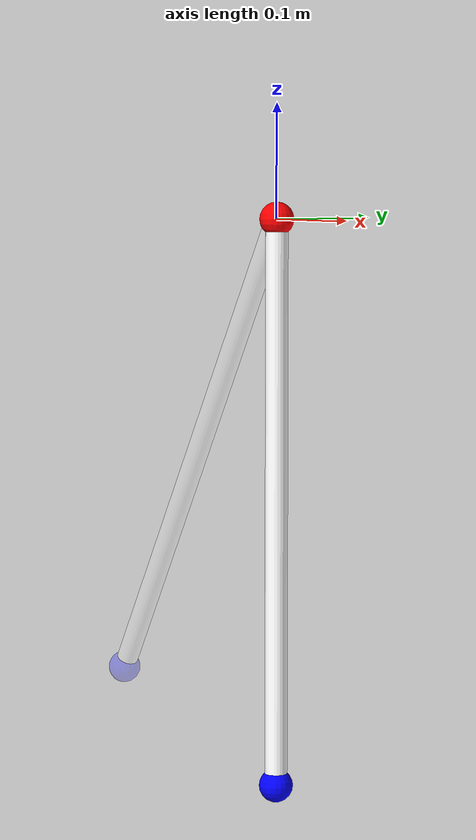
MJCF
<mujoco model="3d_pendulum">
  <compiler angle="radian" balanceinertia="true" inertiafromgeom="true"
    meshdir="/home/yinglong/Documents/research/task_motion_planning/infrastructure/motoman_ws/src/pracsys_vbnpm/"
    texturedir="/home/yinglong/Documents/research/task_motion_planning/infrastructure/motoman_ws/src/pracsys_vbnpm/"
    autolimits="true"/>

  <asset>
    <texture builtin="checker" height="512" name="grid" rgb1="0.1 0.2 0.3" rgb2="0.2 0.3 0.4" type="2d" width="512"/>
    <material name="grid" emission="1" reflectance="0" shininess="0" specular="0" texrepeat="0.5 0.5" texture="grid" texuniform="true"/>
  </asset>
  <worldbody>
    <geom condim="3" material="grid" name="floor" size="2 2 0.05" pos="0 0 -1.2" type="plane"/>
    <geom conaffinity="0" contype="0" group="1" material="grid" name="floor_vis" size="2 2 0.05" pos="0 0 -1.2" type="plane"/>
    <light castshadow="false" diffuse="1 1 1" dir="0 0 -1" directional="true" pos="-0.5 0.5 3"/>
    <body name="pendulum_root" pos="0 0 0" quat="1 0 0 0">
    <geom contype="0" conaffinity="0" size="0.015" rgba="1.0 0 0 1" type="sphere"/>
        <body name="pendulum_link" pos="0 0 0" quat="1 0 0 0">
        <geom size="0.01" fromto="0 0 0 0 0 -0.5" rgba="1.0 1.0 1.0 1.0" type="cylinder" mass="1"/>
        <joint name="ball_joint" type="ball" damping="0.1" frictionloss="0.5"/>
            <body name="tip" pos="0 0 -0.5" quat="1 0 0 0">
            <geom contype="0" conaffinity="0" size="0.015" rgba="0 0 1 1" type="sphere" mass="0.5"/>
            </body>
        </body>
    </body>

    <body name="goal_pendulum_root" pos="0 0 0" quat="1 0 0 0">
    <geom contype="0" conaffinity="0" size="0.015" rgba="1.0 0 0 0.3" type="sphere"/>
    <!-- quat="0.1736482 0 0.9848078 0" -->
        <body name="goal_pendulum_link" pos="0 0 0" quat="0.9659258 0 0.258819 0">
        <geom contype="0" conaffinity="0" size="0.01" fromto="0 0 0 0 0 -0.5" rgba="1.0 1.0 1.0 0.3" type="cylinder" mass="1"/>
            <body name="goal_tip" pos="0 0 -0.5" quat="1 0 0 0">
            <geom contype="0" conaffinity="0" size="0.015" rgba="0 0 1 0.3" type="sphere" mass="0.5"/>
            </body>
        </body>
    </body>
  </worldbody>

    <actuator>
        <intvelocity name="axis_x" joint="ball_joint" gear="1 0 0" ctrlrange="-0.37 0.37" actrange="-3.10 3.10" kp="10"/>
        <intvelocity name="axis_y" joint="ball_joint" gear="0 1 0" ctrlrange="-0.37 0.37" actrange="-3.10 3.10" kp="10"/>
        <intvelocity name="axis_z" joint="ball_joint" gear="0 0 1" ctrlrange="-0.37 0.37" actrange="-3.10 3.10" kp="10"/>
    </actuator>

    <sensor>
    <!-- provide sensor information of the joint -->
    <ballquat name="sensor_quat" joint="ball_joint" />

    </sensor>
</mujoco>
